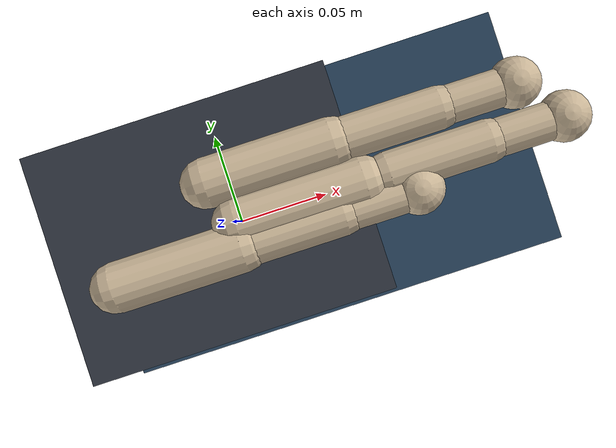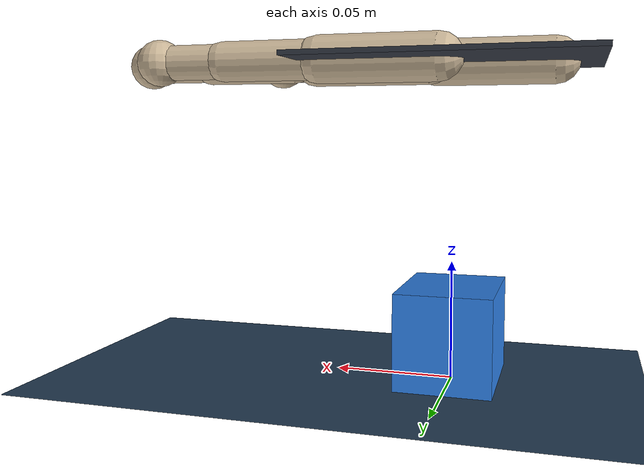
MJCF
<mujoco model="scene_prism1_tn0d0103p0d0157p0d0000_ip0d0039n0d0154p0d0024_mp0d0106p0d0269p0d0095">
  <compiler angle="radian" autolimits="true" />
  <option timestep="0.002" gravity="0 0 -9.81" integrator="implicitfast" />
  <visual>
    <headlight ambient=".4 .4 .4" diffuse=".8 .8 .8" specular="0.1 0.1 0.1" />
    <map znear=".01" />
    <quality shadowsize="2048" />
    <global elevation="-15" />
  </visual>
  <default>
    <geom friction="1.0 0.05 0.001" solref="0.01 1" solimp="0.95 0.99 0.001" />
    <motor ctrlrange="-1 1" ctrllimited="true" />
    <default class="pose">
      <joint damping="2.0" armature="0.01" />
      <position kp="4000" kv="100" forcerange="-1000 1000" />
    </default>
    <default class="ctrl">
      <joint damping="0.5" armature="0.001" />
      <position kp="30" kv="0.5" gear="1" forcerange="-10 10" ctrlrange="-1 1" />
    </default>
  </default>
  <asset>
    <texture type="skybox" builtin="gradient" rgb1="0.3 0.5 0.7" rgb2="0 0 0" width="512" height="3072" />
    <texture type="2d" name="groundplane" builtin="checker" mark="edge" rgb1="0.2 0.3 0.4" rgb2="0.1 0.2 0.3" markrgb="0.8 0.8 0.8" width="300" height="300" />
    <material name="groundplane" texture="groundplane" texuniform="true" texrepeat="5 5" reflectance="0.2" />
    <texture name="grid" type="2d" builtin="checker" rgb1="0.15 0.15 0.15" rgb2="0.25 0.25 0.25" width="256" height="256" />
    <material name="table_mat" texture="grid" texrepeat="3 3" reflectance="0.2" />
    <material name="palm_mat" rgba="0.18 0.2 0.24 1" />
    <material name="finger_mat" rgba="0.8 0.72 0.6 1" />
    <material name="object_mat" rgba="0.18 0.5 0.9 1" />
  </asset>
  <worldbody>
    <light pos="0 0 1.5" dir="0 0 -1" directional="true" diffuse=".6 .6 .6" specular=".2 .2 .2" />
    <light pos="0.5 0.5 1.0" dir="-1 -1 -1" directional="true" diffuse=".4 .4 .4" specular=".1 .1 .1" />
    <geom name="floor" type="plane" size="1.5 1.5 0.1" material="groundplane" />
    <body name="cube" pos="0.000000 0.000000 0.020000">
      <freejoint />
      <geom type="box" size="0.020000 0.025000 0.020000" density="500" material="object_mat" />
    </body>
    <body gravcomp="1" name="palm_pose" pos="0 0 0.134">
      <joint class="pose" name="palm_px" type="slide" axis="1 0 0" range="-0.20 0.20" />
      <joint class="pose" name="palm_py" type="slide" axis="0 1 0" range="-0.20 0.20" />
      <joint class="pose" name="palm_pz" type="slide" axis="0 0 1" range="-0.15 0.35" />
      <joint class="pose" name="palm_rx" type="hinge" axis="1 0 0" range="-1.57 1.57" />
      <joint class="pose" name="palm_ry" type="hinge" axis="0 1 0" range="-1.57 1.57" />
      <joint class="pose" name="palm_rz" type="hinge" axis="0 0 1" range="-3.14 3.14" />
      <geom type="box" size="0.06 0.045 0.001" material="palm_mat" />
      <body name="thumb_mount" pos="-0.040338 -0.012305 0">
        <inertial pos="0 0 0" mass="0.001" diaginertia="1e-6 1e-6 1e-6" />
        <body name="thumb_yaw_frame">
          <inertial pos="0 0 0" mass="0.001" diaginertia="1e-6 1e-6 1e-6" />
          <joint class="ctrl" name="thumb_yaw" type="hinge" axis="1 0 0" range="-1.1 1.1" />
          <body name="thumb_mcp_frame">
            <joint class="ctrl" name="thumb_mcp" type="hinge" axis="0 1 0" range="0 3.14" />
            <geom type="capsule" fromto="0 0 0 0.05 0 0" size="0.010" material="finger_mat" />
            <body name="thumb_len_frame" pos="0.05 0 0">
              <geom type="capsule" fromto="0 0 0 0.04 0 0" size="0.0085" material="finger_mat" />
              <body name="thumb_pip_frame" pos="0.04 0 0">
                <joint class="ctrl" name="thumb_pip" type="hinge" axis="0 1 0" range="-1.2 0.5" />
                <geom type="capsule" fromto="0 0 0 0.03 0 0" size="0.0075" material="finger_mat" />
                <body name="thumb_tip" pos="0.03 0 0">
                  <geom type="sphere" size="0.010" material="finger_mat" />
                </body>
              </body>
            </body>
          </body>
        </body>
      </body>
      <body name="index_mount" pos="0.003863 0.0146 0">
        <inertial pos="0 0 0" mass="0.001" diaginertia="1e-6 1e-6 1e-6" />
        <body name="index_yaw_frame">
          <inertial pos="0 0 0" mass="0.001" diaginertia="1e-6 1e-6 1e-6" />
          <joint class="ctrl" name="index_yaw" type="hinge" axis="1 0 0" range="-1.1 1.1" />
          <body name="index_mcp_frame">
            <joint class="ctrl" name="index_mcp" type="hinge" axis="0 1 0" range="0 2.5" />
            <geom type="capsule" fromto="0 0 0 0.05 0 0" size="0.010" material="finger_mat" />
            <body name="index_len_frame" pos="0.052371 0 0">
              <geom type="capsule" fromto="0 0 0 0.04 0 0" size="0.0085" material="finger_mat" />
              <body name="index_pip_frame" pos="0.04 0 0">
                <joint class="ctrl" name="index_pip" type="hinge" axis="0 1 0" range="-1.2 1.57" />
                <geom type="capsule" fromto="0 0 0 0.03 0 0" size="0.0075" material="finger_mat" />
                <body name="index_tip" pos="0.03 0 0">
                  <geom type="sphere" size="0.010" material="finger_mat" />
                </body>
              </body>
            </body>
          </body>
        </body>
      </body>
      <body name="middle_mount" pos="0.010605 -0.003099 0">
        <inertial pos="0 0 0" mass="0.001" diaginertia="1e-6 1e-6 1e-6" />
        <body name="middle_yaw_frame">
          <inertial pos="0 0 0" mass="0.001" diaginertia="1e-6 1e-6 1e-6" />
          <joint class="ctrl" name="middle_yaw" type="hinge" axis="1 0 0" range="-1.1 1.1" />
          <body name="middle_mcp_frame">
            <joint class="ctrl" name="middle_mcp" type="hinge" axis="0 1 0" range="0 2.5" />
            <geom type="capsule" fromto="0 0 0 0.05 0 0" size="0.010" material="finger_mat" />
            <body name="middle_len_frame" pos="0.059546 0 0">
              <geom type="capsule" fromto="0 0 0 0.04 0 0" size="0.0085" material="finger_mat" />
              <body name="middle_pip_frame" pos="0.04 0 0">
                <joint class="ctrl" name="middle_pip" type="hinge" axis="0 1 0" range="-1.2 1.57" />
                <geom type="capsule" fromto="0 0 0 0.03 0 0" size="0.0075" material="finger_mat" />
                <body name="middle_tip" pos="0.03 0 0">
                  <geom type="sphere" size="0.010" material="finger_mat" />
                </body>
              </body>
            </body>
          </body>
        </body>
      </body>
    </body>
  </worldbody>
  <actuator>
    <position class="pose" name="a_palm_px" joint="palm_px" ctrlrange="-0.20 0.20" />
    <position class="pose" name="a_palm_py" joint="palm_py" ctrlrange="-0.20 0.20" />
    <position class="pose" name="a_palm_pz" joint="palm_pz" ctrlrange="-0.15 0.35" />
    <position class="pose" name="a_palm_rx" joint="palm_rx" ctrlrange="-1.57 1.57" />
    <position class="pose" name="a_palm_ry" joint="palm_ry" ctrlrange="-1.57 1.57" />
    <position class="pose" name="a_palm_rz" joint="palm_rz" ctrlrange="-3.14 3.14" />
    <position class="ctrl" name="a_thumb_yaw" joint="thumb_yaw" ctrlrange="-1.1 1.1" />
    <position class="ctrl" name="a_thumb_mcp" joint="thumb_mcp" ctrlrange="0 3.14" />
    <position class="ctrl" name="a_thumb_pip" joint="thumb_pip" ctrlrange="-1.2 0.5" />
    <position class="ctrl" name="a_index_yaw" joint="index_yaw" ctrlrange="-1.1 1.1" />
    <position class="ctrl" name="a_index_mcp" joint="index_mcp" ctrlrange="0 2.5" />
    <position class="ctrl" name="a_index_pip" joint="index_pip" ctrlrange="-1.2 1.57" />
    <position class="ctrl" name="a_middle_yaw" joint="middle_yaw" ctrlrange="-1.1 1.1" />
    <position class="ctrl" name="a_middle_mcp" joint="middle_mcp" ctrlrange="0 2.5" />
    <position class="ctrl" name="a_middle_pip" joint="middle_pip" ctrlrange="-1.2 1.57" />
  </actuator>
  <keyframe>
    <key name="open" qpos="&#10;        0 0 0.02 1 0 0 0 0.02 0 0 0 0 0 0 2 -0.707 0 1.25 1 0 1.25 1&#10;      " ctrl="&#10;        0.02 0 0 0 0 0 0 2 -0.707 0 1.25 1 0 1.25 1&#10;      " />
    <key name="foundational" qpos="&#10;        -0.01566945618 -0.003284259727 0.02093599308 0.9997637204 0.01752734805 -0.003574933312 -0.01234970597 0.02000401313 1.267203988e-05 -0.0003905094444 1.069236217e-06 -5.993572565e-06 -5.604316809e-07 0.1779636018 1.967357389 -0.7565776119 -0.07710569831 1.419551564 1.088306146 -0.08173967119 1.42980379 1.025720008&#10;      " ctrl="&#10;        0.02 0 0 0 0 0 0.1766227355 1.873968404 -0.7805519 -0.08350843124 1.508851953 1.103342727 -0.08091088694 1.43008663 1.025778669&#10;      " />
  </keyframe>
</mujoco>
